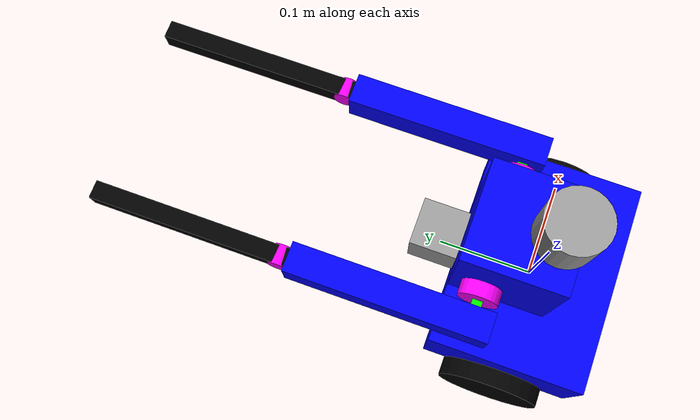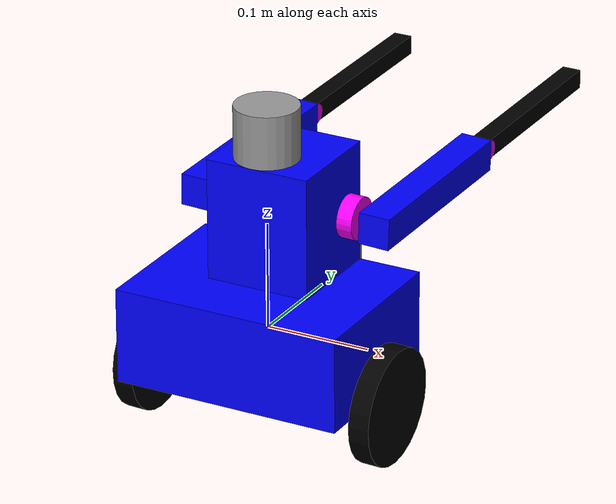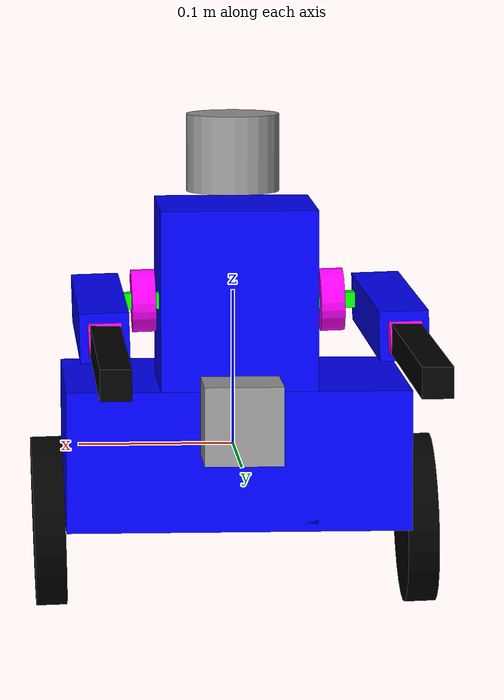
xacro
<?xml version="1.0"?>
<robot name="robot" xmlns:xacro="http://www.ros.org/wiki/xacro">
  <xacro:include filename="$(find my_robot_simulation_control)/urdf/materials.xacro" />
  <xacro:include filename="./robot_diff.gazebo" />

  <!-- Базовое звено -->
  <link name='base_link'>
    <visual>
      <origin xyz="0 0 0" rpy="0 0 0"/>
      <geometry>
        <box size="0.22 0.16 0.09"/>
      </geometry>
      <material name="blue">
        <color rgba="0 0 1 1"/>
      </material>
    </visual>
  </link>

  <!-- Вертикальная стойка (фиксированная) -->
  <link name='founder'>
    <visual>
      <origin xyz="0 0.03 0.01" rpy="0 0 0"/>
      <geometry>
        <box size="0.1 0.1 0.2"/>
      </geometry>
      <material name="blue">
        <color rgba="0 0 1 1"/>
      </material>
    </visual>
  </link>

  <joint name="joint_founder" type="fixed">
    <parent link="base_link"/>
    <child link="founder"/>
    <origin xyz="0 0 0.05"/>
  </joint>

  <!-- New link: parallel to base_link and perpendicular to founder -->
  <link name="link2">
    <visual>
      <origin xyz="0.0 0.05 0" rpy="0 1.5707 0"/> <!-- Positioned perpendicular to founder -->
      <geometry>
        <box size="0.01 0.01 0.2"/> <!-- Adjust size as needed -->
      </geometry>
      <material name="green">
        <color rgba="0 1 0 1"/>
      </material>
    </visual>
  </link>

  <!-- Joint to connect 'new_link' to 'founder' -->
  <joint name="base_joint" type="revolute">
    <parent link="founder"/>
    <child link="link2"/>
    <origin xyz="0 0 0.05" rpy="0 0 0"/>
    <axis xyz="1 0 0"/>
    <limit lower="-0.2" upper="1.57" effort="50" velocity="1.0"/>
  </joint>

  <!-- upper Колеса -->
  <link name="link1">
    <visual>
      <origin xyz="-0.02 0 0" rpy="0 1.6 0"/>
      <geometry>
        <cylinder length="0.015" radius="0.02"/>
      </geometry>
      <material name="pink">
        <color rgba="1 0 1 1"/>
      </material>
    </visual>
  </link>

  <joint name="joint12" type="fixed">
    <parent link="link2"/>
    <child link="link1"/>
    <origin xyz="0.08 0.05 0" rpy="0 0 0"/>
  </joint>

  <link name="link3">
    <visual>
      <origin xyz="0.02 0 0" rpy="0 1.6 0"/>
      <geometry>
        <cylinder length="0.015" radius="0.02"/>
      </geometry>
      <material name="pink">
        <color rgba="1 0 1 1"/>
      </material>
    </visual>
  </link>

  <joint name="joint23" type="fixed">
    <parent link="link2"/>
    <child link="link3"/>
    <origin xyz="-0.08 0.05 0" rpy="0 0 0"/>
  </joint>

  <!-- hands -->
  <link name="hand1">
    <visual>
      <origin xyz="0.03 0.12 0" rpy="0 1.6 0"/>
      <geometry>
        <box size="0.03 0.2 0.03"/>
      </geometry>
      <material name="blue">
        <color rgba="0 0 1 1"/>
      </material>
    </visual>
  </link>

  <link name="hand2">
    <visual>
      <origin xyz="0.03 0.12 0" rpy="0 1.6 0"/>
      <geometry>
        <box size="0.03 0.2 0.03"/>
      </geometry>
      <material name="blue">
        <color rgba="0 0 1 1"/>
      </material>
    </visual>
  </link>

  <joint name="joint_hand_1" type="revolute">
    <parent link="link2"/>
    <child link="hand1"/>
    <origin xyz="0.06 0.01 0" rpy="0 0 0"/>
    <axis xyz="0 0 -1"/>
    <limit lower="0" upper="0.1" effort="50" velocity="1.0"/>
  </joint>

  <joint name="joint_hand_2" type="revolute">
    <parent link="link2"/>
    <child link="hand2"/>
    <origin xyz="-0.12 0.01 0" rpy="0 0 0"/>
    <axis xyz="0 0 1"/>
    <limit lower="0" upper="0.1" effort="50" velocity="1.0"/>
  </joint>

  <!-- wheels between hands and platforms -->
  <link name="elbow1">
    <visual>
      <origin xyz="0.03 0.228 0" rpy="0 1.6 0"/>
      <geometry>
        <cylinder length="0.02" radius="0.01"/>
      </geometry>
      <material name="pink">
        <color rgba="1 0 1 1"/>
      </material>
    </visual>
  </link>

  <link name="elbow2">
    <visual>
      <origin xyz="0.03 0.228 0" rpy="0 1.6 0"/>
      <geometry>
        <cylinder length="0.02" radius="0.01"/>
      </geometry>
      <material name="pink">
        <color rgba="1 0 1 1"/>
      </material>
    </visual>
  </link>

  <joint name="elbow1_joint" type="revolute">
    <parent link="hand1"/>
    <child link="elbow1"/>
    <origin xyz="0 0 0" rpy="0 0 0"/>
    <axis xyz="1 0 0"/>
    <limit lower="-0.03" upper="0.03" effort="50" velocity="1.0"/>
  </joint>

  <joint name="elbow2_joint" type="revolute">
    <parent link="hand2"/>
    <child link="elbow2"/>
    <origin xyz="0 0 0" rpy="0 0 0"/>
    <axis xyz="1 0 0"/>
    <limit lower="-0.03" upper="0.03" effort="50" velocity="1.0"/>
  </joint>

  <!-- platforms -->
  <link name="plat1">
    <visual>
      <origin xyz="0.03 0.31 0" rpy="0 0 0"/>
      <geometry>
        <box size="0.018 0.2 0.018"/>
      </geometry>
      <material name="black">
        <color rgba="0 0 0 1"/>
      </material>
    </visual>
  </link>

  <link name="plat2">
    <visual>
      <origin xyz="0.03 0.31 0" rpy="0 0 0"/>
      <geometry>
        <box size="0.018 0.2 0.018"/>
      </geometry>
      <material name="black">
        <color rgba="0 0 0 1"/>
      </material>
    </visual>
  </link>

  <joint name="joint_platform_1" type="fixed">
    <parent link="elbow1"/>
    <child link="plat1"/>
    <origin xyz="0.0 0.01 0" rpy="0 0 0"/>
  </joint>

  <joint name="joint_platform_2" type="fixed">
    <parent link="elbow2"/>
    <child link="plat2"/>
    <origin xyz="0.0 0.01 0" rpy="0 0 0"/>
  </joint>

  <!-- Колеса (платформа CC) -->
  <link name='wheel_left'>
    <visual name='wheel_left_visual'>
      <origin xyz="0.02 0 0" rpy="0 1.6 0"/>
      <geometry>
        <cylinder length="0.02" radius="0.055"/>
      </geometry>
      <material name="black">
        <color rgba="0 0 0 1"/> <!-- Черный цвет -->
      </material>
    </visual>
  </link>

  <link name='wheel_right'>
    <visual name='wheel_right_visual'>
      <origin xyz="-0.02 0 0" rpy="0 1.6 0"/>
      <geometry>
        <cylinder length="0.02" radius="0.055"/>
      </geometry>
      <material name="black">
        <color rgba="0 0 0 1"/>
      </material>
    </visual>
  </link>

  <joint name="left_wheel_joint" type="continuous">
    <parent link="base_link"/>
    <child link="wheel_left"/>
    <origin xyz="0.1 0 -0.05" rpy="0 0 0"/>
    <axis xyz="1 0 0"/>
  </joint>

  <joint name="right_wheel_joint" type="continuous">
    <parent link="base_link"/>
    <child link="wheel_right"/>
    <origin xyz="-0.1 0 -0.05" rpy="0 0 0"/>
    <axis xyz="1 0 0"/>
  </joint>

  <!-- Линки для камеры и лидара -->
  <link name="camera">
    <visual name="camera_visual">
      <origin xyz="0 0 0" rpy=" 0 0 0" />
      <geometry>
        <box size=".05 .05 .05" />
      </geometry>
      <material name="gray" />
    </visual>
  </link>

  <link name="lidar_link">
    <visual name="lidar_visual">
      <origin xyz="0 0 0" rpy=" 0 0 0" />
      <geometry>
        <cylinder length="0.05" radius="0.03" />
      </geometry>
      <material name="gray" />
    </visual>
  </link>

  <!-- Джоинты для камеры и лидара -->
  <joint type="fixed" name="lidar_joint">
    <origin xyz="0 0 0.19" rpy="0 0 1.57" />
    <child link="lidar_link" />
    <parent link="base_link" />
  </joint>

  <joint type="fixed" name="camera_joint">
    <origin xyz="0 0.105 0.03" rpy="0 0 1.57" />
    <child link="camera" />
    <parent link="base_link" />
  </joint>

  <!-- Трансмиссии -->
  <transmission name="tran1">
    <type>transmission_interface/SimpleTransmission</type>
    <joint name="left_wheel_joint">
      <hardwareInterface>EffortJointInterface</hardwareInterface>
    </joint>
    <actuator name="motor1">
      <hardwareInterface>EffortJointInterface</hardwareInterface>
      <mechanicalReduction>1</mechanicalReduction>
    </actuator>
  </transmission>

  <transmission name="tran2">
    <type>transmission_interface/SimpleTransmission</type>
    <joint name="right_wheel_joint">
      <hardwareInterface>EffortJointInterface</hardwareInterface>
    </joint>
    <actuator name="motor2">
      <hardwareInterface>EffortJointInterface</hardwareInterface>
      <mechanicalReduction>1</mechanicalReduction>
    </actuator>
  </transmission>
</robot>
